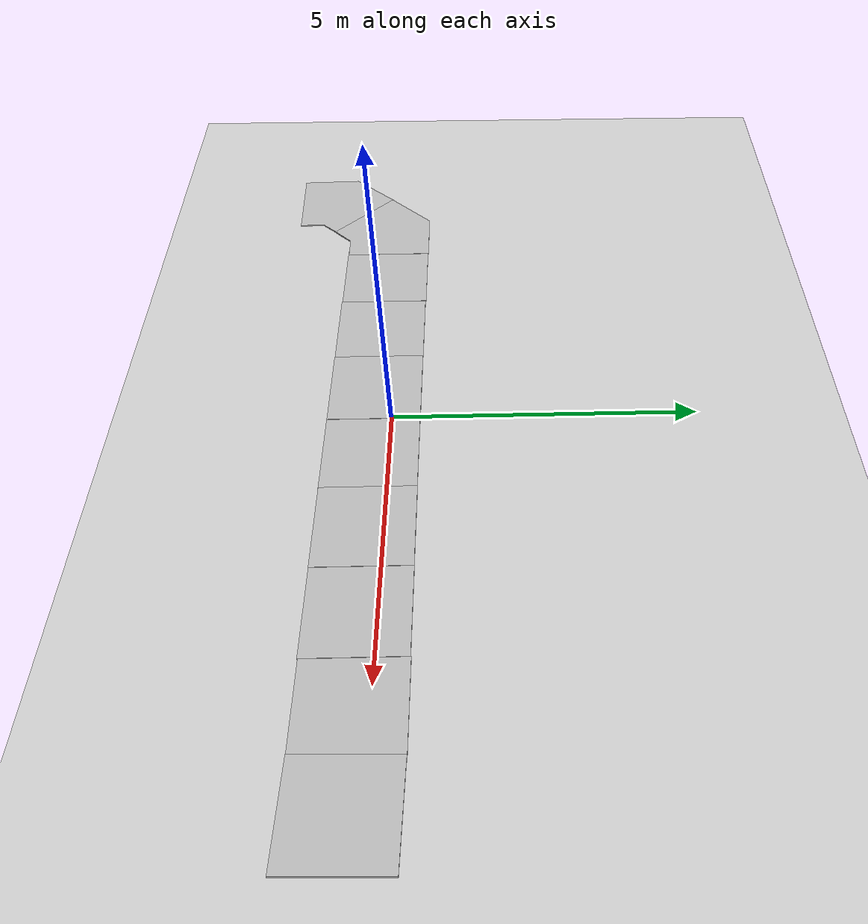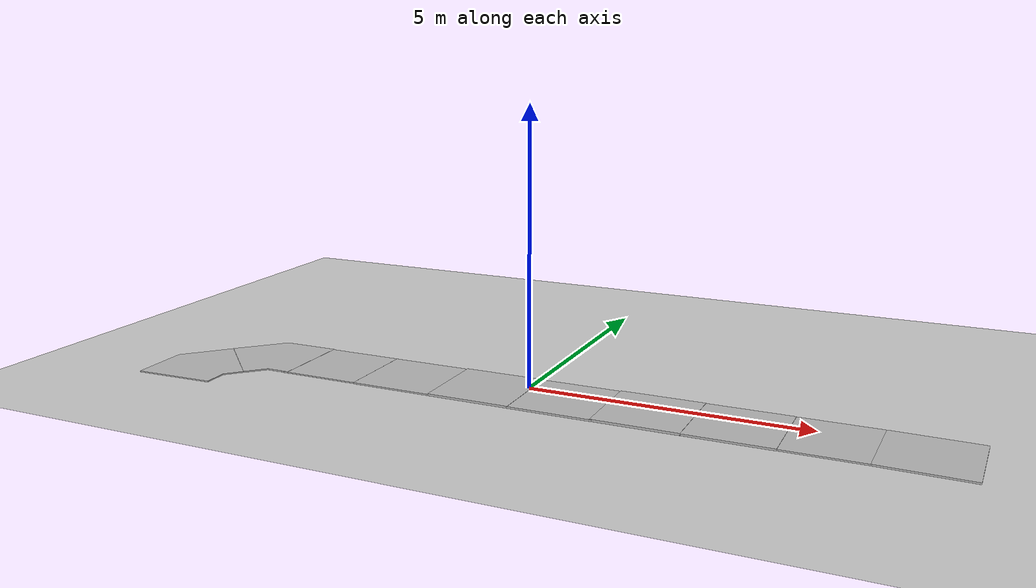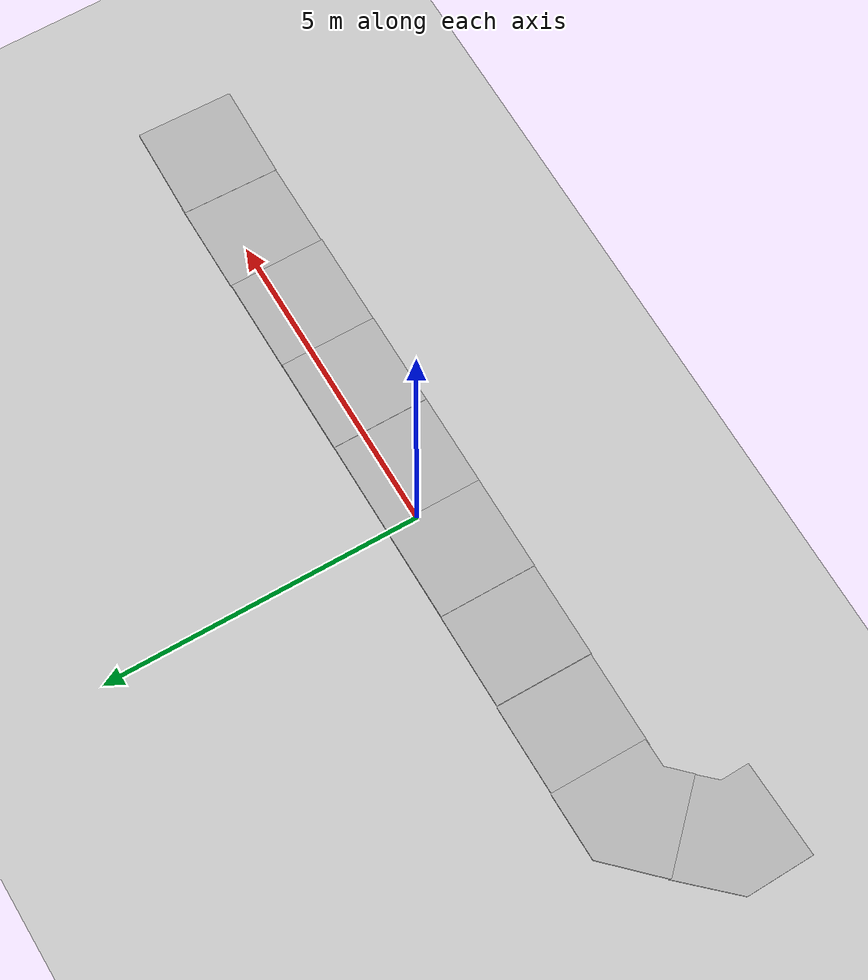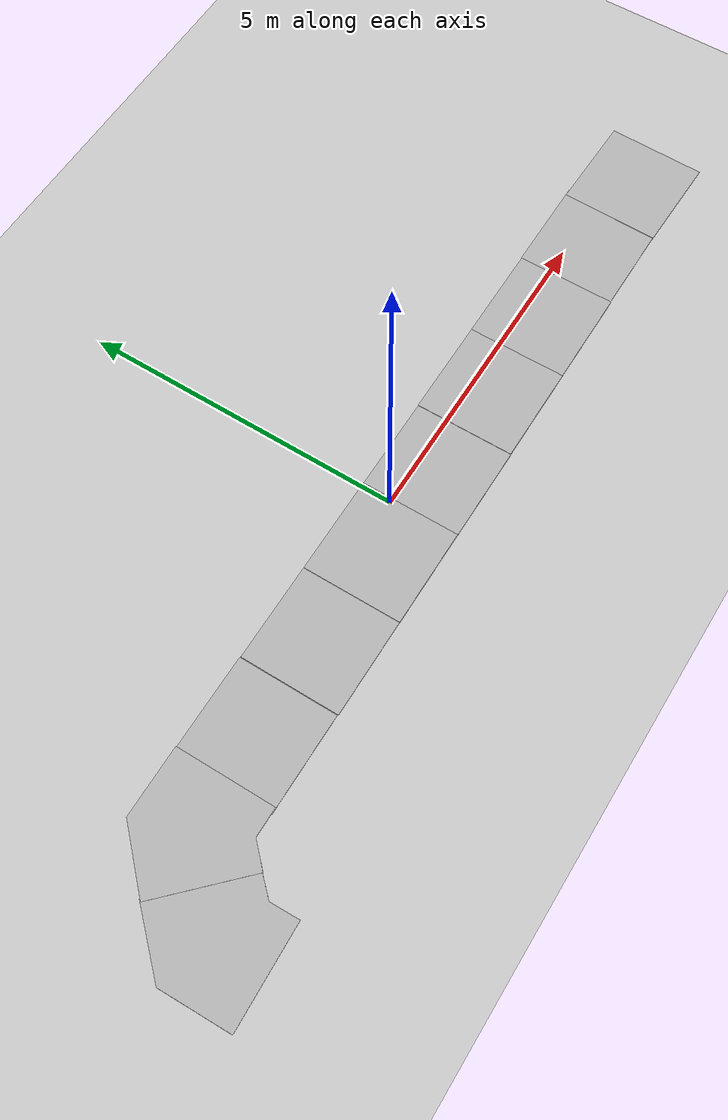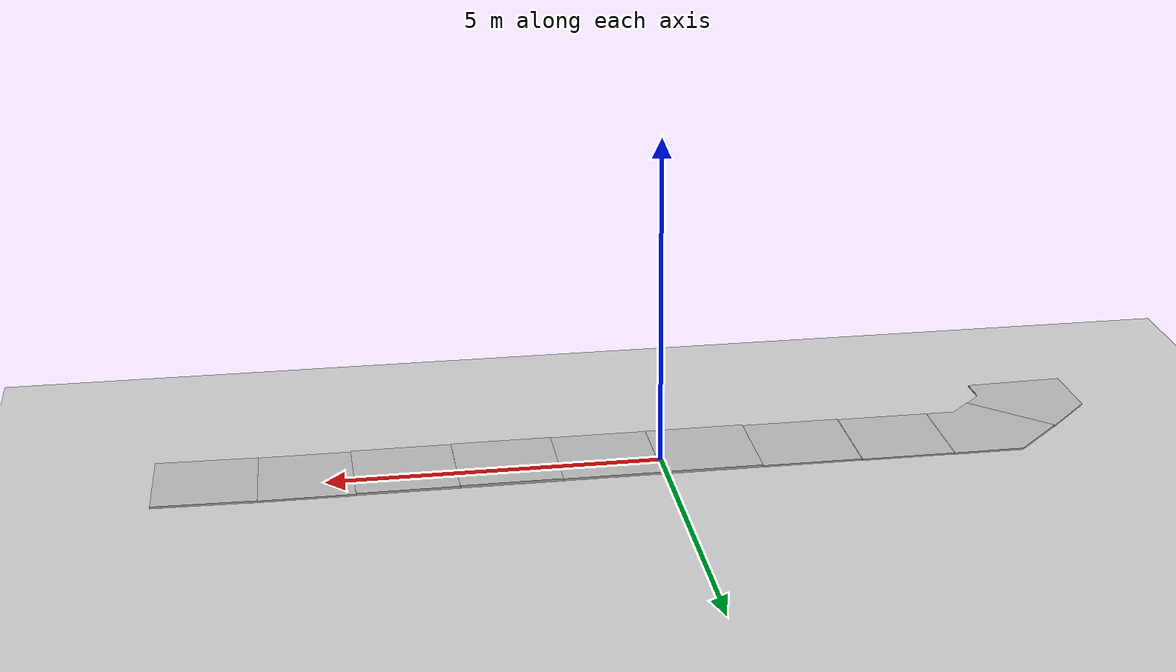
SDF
<sdf version="1.7">
 <world name="default">
  <light name="sun" type="directional">
   <pose>0 0 10 0 -0 0</pose>
   <diffuse>0.8 0.8 0.8 1</diffuse>
   <specular>0.2 0.2 0.2 1</specular>
   <attenuation>
    <range>1000</range>
    <constant>0.9</constant>
    <linear>0.01</linear>
    <quadratic>0.001</quadratic>
   </attenuation>
   <direction>-0.5 0.1 -0.9</direction>
   <spot><inner_angle>0</inner_angle><outer_angle>0</outer_angle><falloff>0</falloff></spot>
  </light>
  <model name="ground_plane">
   <static>1</static>
   <link name="link">
    <collision name="collision">
     <geometry><plane><normal>0 0 1</normal><size>100 100</size></plane></geometry>
     <surface><friction><ode><mu>100</mu><mu2>50</mu2></ode></friction></surface>
    </collision>
    <visual name="visual">
     <cast_shadows>0</cast_shadows>
     <geometry><plane><normal>0 0 1</normal><size>100 100</size></plane></geometry>
     <material>
      <script><uri>file://media/materials/scripts/gazebo.material</uri><name>Gazebo/Grey</name></script>
     </material>
    </visual>
   </link>
  </model>
  <gravity>0 0 -9.8</gravity>
  <magnetic_field>6e-06 2.3e-05 -4.2e-05</magnetic_field>
  <atmosphere type="adiabatic"/>
  <physics type="ode">
   <max_step_size>0.001</max_step_size>
   <real_time_factor>1</real_time_factor>
   <real_time_update_rate>1000</real_time_update_rate>
  </physics>
  <scene><ambient>0.4 0.4 0.4 1</ambient><background>0.7 0.7 0.7 1</background><shadows>1</shadows></scene>
  <audio><device>default</device></audio>
  <spherical_coordinates>
   <surface_model>EARTH_WGS84</surface_model>
   <latitude_deg>0</latitude_deg>
   <longitude_deg>0</longitude_deg>
   <elevation>0</elevation>
   <heading_deg>0</heading_deg>
  </spherical_coordinates>
  <model name="walkway_metal_straight">
   <static>1</static>
   <link name="link">
    <collision name="collision">
     <pose>0 0.762 0.076075 0 -0 0</pose>
     <geometry><box><size>1.524 1.524 0.15215</size></box></geometry>
    </collision>
    <visual name="visual">
     <geometry>
      <mesh><scale>0.001 0.001 0.001</scale><uri>model://walkway_metal_straight/meshes/mesh.obj</uri></mesh>
     </geometry>
    </visual>
   </link>
   <pose>-4.51219 -0.284897 -0.143989 0 0 -1.56903</pose>
  </model>
  <model name="walkway_metal_90">
   <static>1</static>
   <link name="link">
    <collision name="collision">
     <pose>0 0.762 0.076075 0 -0 0</pose>
     <geometry><box><size>1.524 1.524 0.15215</size></box></geometry>
    </collision>
    <visual name="visual">
     <geometry>
      <mesh><scale>0.001 0.001 0.001</scale><uri>model://walkway_metal_90/meshes/mesh.obj</uri></mesh>
     </geometry>
    </visual>
   </link>
   <pose>5.97091 -0.270523 -0.136774 0 0 -1.59527</pose>
  </model>
  <model name="walkway_metal_straight_clone">
   <static>1</static>
   <link name="link">
    <collision name="collision">
     <pose>0 0.762 0.076075 0 -0 0</pose>
     <geometry><box><size>1.524 1.524 0.15215</size></box></geometry>
    </collision>
    <visual name="visual">
     <geometry>
      <mesh><scale>0.001 0.001 0.001</scale><uri>model://walkway_metal_straight/meshes/mesh.obj</uri></mesh>
     </geometry>
    </visual>
   </link>
   <pose>-2.98051 -0.292768 -0.140444 0 0 -1.56903</pose>
  </model>
  <model name="walkway_metal_straight_clone_0">
   <static>1</static>
   <link name="link">
    <collision name="collision">
     <pose>0 0.762 0.076075 0 -0 0</pose>
     <geometry><box><size>1.524 1.524 0.15215</size></box></geometry>
    </collision>
    <visual name="visual">
     <geometry>
      <mesh><scale>0.001 0.001 0.001</scale><uri>model://walkway_metal_straight/meshes/mesh.obj</uri></mesh>
     </geometry>
    </visual>
   </link>
   <pose>-1.46661 -0.293039 -0.128608 0 0 -1.56903</pose>
  </model>
  <model name="walkway_metal_straight_clone_1">
   <static>1</static>
   <link name="link">
    <collision name="collision">
     <pose>0 0.762 0.076075 0 -0 0</pose>
     <geometry><box><size>1.524 1.524 0.15215</size></box></geometry>
    </collision>
    <visual name="visual">
     <geometry>
      <mesh><scale>0.001 0.001 0.001</scale><uri>model://walkway_metal_straight/meshes/mesh.obj</uri></mesh>
     </geometry>
    </visual>
   </link>
   <pose>0.040539 -0.293152 -0.133408 0 0 -1.56903</pose>
  </model>
  <model name="walkway_metal_straight_clone_2">
   <static>1</static>
   <link name="link">
    <collision name="collision">
     <pose>0 0.762 0.076075 0 -0 0</pose>
     <geometry><box><size>1.524 1.524 0.15215</size></box></geometry>
    </collision>
    <visual name="visual">
     <geometry>
      <mesh><scale>0.001 0.001 0.001</scale><uri>model://walkway_metal_straight/meshes/mesh.obj</uri></mesh>
     </geometry>
    </visual>
   </link>
   <pose>1.53346 -0.286716 -0.125668 0 0 -1.56903</pose>
  </model>
  <model name="walkway_metal_straight_clone_3">
   <static>1</static>
   <link name="link">
    <collision name="collision">
     <pose>0 0.762 0.076075 0 -0 0</pose>
     <geometry><box><size>1.524 1.524 0.15215</size></box></geometry>
    </collision>
    <visual name="visual">
     <geometry>
      <mesh><scale>0.001 0.001 0.001</scale><uri>model://walkway_metal_straight/meshes/mesh.obj</uri></mesh>
     </geometry>
    </visual>
   </link>
   <pose>3.04932 -0.281094 -0.131709 0 0 -1.56903</pose>
  </model>
  <model name="walkway_metal_straight_clone_4">
   <static>1</static>
   <link name="link">
    <collision name="collision">
     <pose>0 0.762 0.076075 0 -0 0</pose>
     <geometry><box><size>1.524 1.524 0.15215</size></box></geometry>
    </collision>
    <visual name="visual">
     <geometry>
      <mesh><scale>0.001 0.001 0.001</scale><uri>model://walkway_metal_straight/meshes/mesh.obj</uri></mesh>
     </geometry>
    </visual>
   </link>
   <pose>4.56645 -0.268683 -0.13971 0 0 -1.56903</pose>
  </model>
  <model name="walkway_metal_45">
   <static>1</static>
   <link name="link">
    <collision name="collision">
     <pose>0 0.538815 0.076075 0 -0 0</pose>
     <geometry><box><size>1.524 1.07763 0.15215</size></box></geometry>
    </collision>
    <collision name="collision2">
     <pose>0.15793 0.92 0.076075 0 0 -0.785398</pose>
     <geometry><box><size>1.524 1.07763 0.15215</size></box></geometry>
    </collision>
    <visual name="visual">
     <geometry>
      <mesh><scale>0.001 0.001 0.001</scale><uri>model://walkway_metal_45/meshes/mesh.obj</uri></mesh>
     </geometry>
    </visual>
   </link>
   <pose>-5.71509 -0.822261 -0.140762 0 0 -0.778724</pose>
  </model>
  <model name="walkway_metal_45_clone">
   <static>1</static>
   <link name="link">
    <collision name="collision">
     <pose>0 0.538815 0.076075 0 -0 0</pose>
     <geometry><box><size>1.524 1.07763 0.15215</size></box></geometry>
    </collision>
    <collision name="collision2">
     <pose>0.15793 0.92 0.076075 0 0 -0.785398</pose>
     <geometry><box><size>1.524 1.07763 0.15215</size></box></geometry>
    </collision>
    <visual name="visual">
     <geometry>
      <mesh><scale>0.001 0.001 0.001</scale><uri>model://walkway_metal_45/meshes/mesh.obj</uri></mesh>
     </geometry>
    </visual>
   </link>
   <pose>-6.16994 -2.08761 -0.144798 0 -0 0.033982</pose>
  </model>
 </world>
</sdf>
